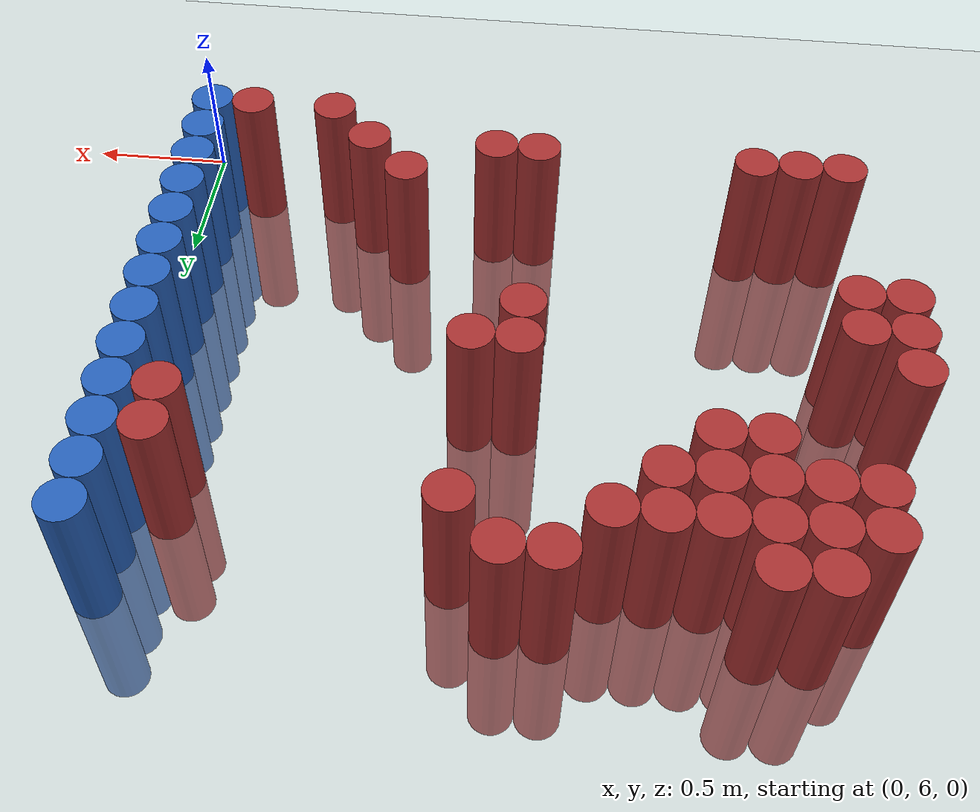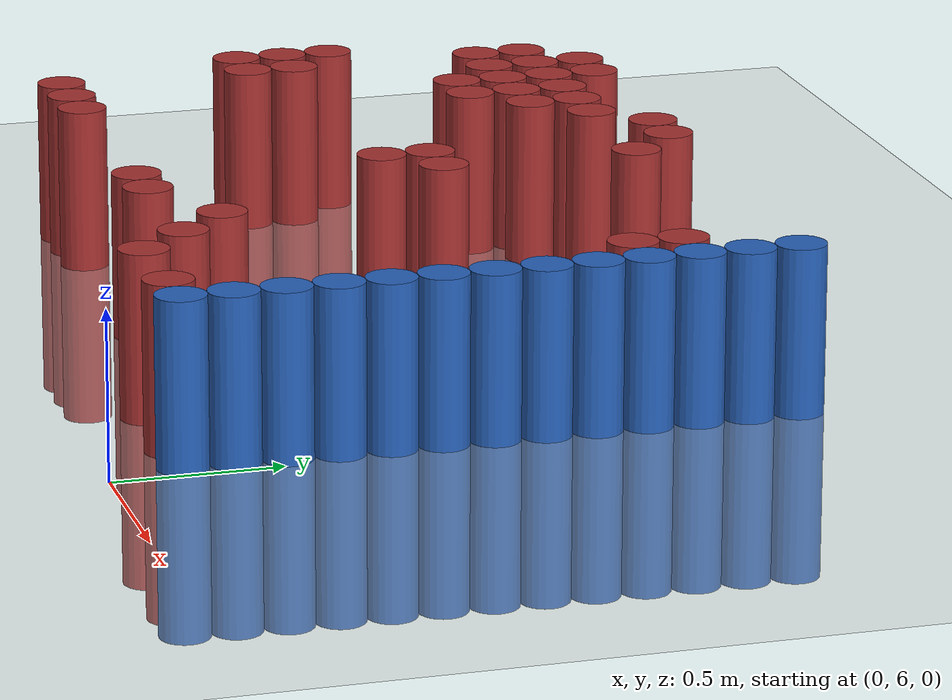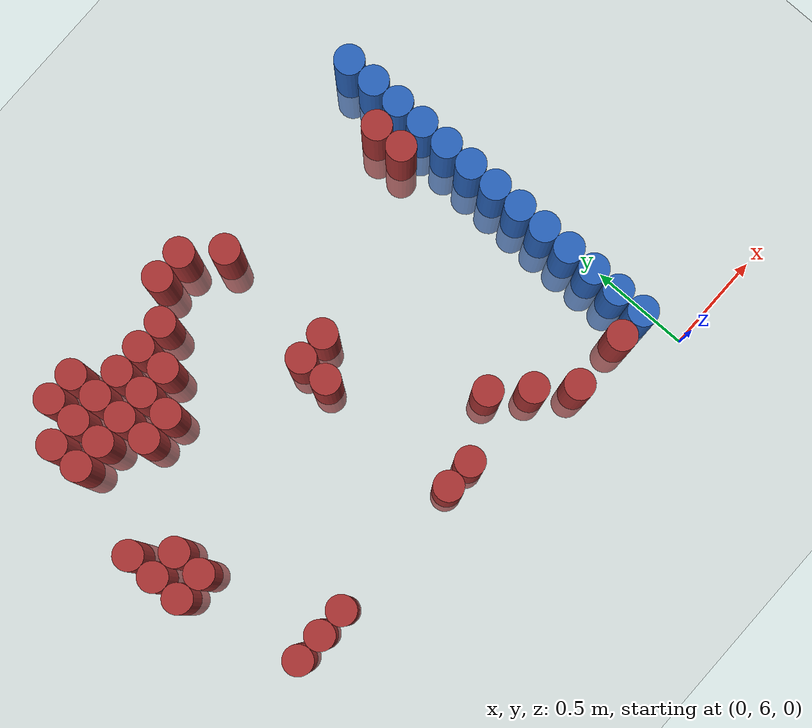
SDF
<sdf version="1.6">
 <world name="default">
  <model name="ground_plane">
   <static>1</static>
   <link name="link">
    <collision name="collision">
     <geometry><plane><normal>0 0 1</normal><size>100 100</size></plane></geometry>
     <surface><friction><ode><mu>100</mu><mu2>50</mu2></ode></friction></surface>
    </collision>
    <visual name="visual">
     <cast_shadows>0</cast_shadows>
     <geometry><plane><normal>0 0 1</normal><size>100 100</size></plane></geometry>
     <material>
      <script><uri>file://media/materials/scripts/gazebo.material</uri><name>Gazebo/Grey</name></script>
     </material>
    </visual>
   </link>
  </model>
  <model name="unit_cylinder_167">
   <static>1</static>
   <pose>-2.475000 6.975000 0.000000 0.000000 0.000000 0.000000</pose>
   <link name="link">
    <inertial>
     <mass>1</mass>
     <inertia><ixx>0.145833</ixx><ixy>0</ixy><ixz>0</ixz><iyy>0.145833</iyy><iyz>0</iyz><izz>0.125</izz></inertia>
    </inertial>
    <collision name="collision">
     <geometry><cylinder><radius>0.075000</radius><length>1</length></cylinder></geometry>
    </collision>
    <visual name="visual">
     <geometry><cylinder><radius>0.075000</radius><length>1</length></cylinder></geometry>
     <material>
      <ambient>0.648000 0.192000 0.192000 1</ambient>
      <diffuse>0.648000 0.192000 0.192000 1</diffuse>
     </material>
     <material>
      <script><name>Gazebo/Grey</name><uri>file://media/materials/scripts/gazebo.material</uri></script>
     </material>
    </visual>
   </link>
  </model>
  <model name="unit_cylinder_168">
   <static>1</static>
   <pose>-2.475000 7.125000 0.000000 0.000000 0.000000 0.000000</pose>
   <link name="link">
    <inertial>
     <mass>1</mass>
     <inertia><ixx>0.145833</ixx><ixy>0</ixy><ixz>0</ixz><iyy>0.145833</iyy><iyz>0</iyz><izz>0.125</izz></inertia>
    </inertial>
    <collision name="collision">
     <geometry><cylinder><radius>0.075000</radius><length>1</length></cylinder></geometry>
    </collision>
    <visual name="visual">
     <geometry><cylinder><radius>0.075000</radius><length>1</length></cylinder></geometry>
     <material>
      <ambient>0.648000 0.192000 0.192000 1</ambient>
      <diffuse>0.648000 0.192000 0.192000 1</diffuse>
     </material>
     <material>
      <script><name>Gazebo/Grey</name><uri>file://media/materials/scripts/gazebo.material</uri></script>
     </material>
    </visual>
   </link>
  </model>
  <model name="unit_cylinder_169">
   <static>1</static>
   <pose>-2.475000 7.275000 0.000000 0.000000 0.000000 0.000000</pose>
   <link name="link">
    <inertial>
     <mass>1</mass>
     <inertia><ixx>0.145833</ixx><ixy>0</ixy><ixz>0</ixz><iyy>0.145833</iyy><iyz>0</iyz><izz>0.125</izz></inertia>
    </inertial>
    <collision name="collision">
     <geometry><cylinder><radius>0.075000</radius><length>1</length></cylinder></geometry>
    </collision>
    <visual name="visual">
     <geometry><cylinder><radius>0.075000</radius><length>1</length></cylinder></geometry>
     <material>
      <ambient>0.648000 0.192000 0.192000 1</ambient>
      <diffuse>0.648000 0.192000 0.192000 1</diffuse>
     </material>
     <material>
      <script><name>Gazebo/Grey</name><uri>file://media/materials/scripts/gazebo.material</uri></script>
     </material>
    </visual>
   </link>
  </model>
  <model name="unit_cylinder_180">
   <static>1</static>
   <pose>-2.325000 6.375000 0.000000 0.000000 0.000000 0.000000</pose>
   <link name="link">
    <inertial>
     <mass>1</mass>
     <inertia><ixx>0.145833</ixx><ixy>0</ixy><ixz>0</ixz><iyy>0.145833</iyy><iyz>0</iyz><izz>0.125</izz></inertia>
    </inertial>
    <collision name="collision">
     <geometry><cylinder><radius>0.075000</radius><length>1</length></cylinder></geometry>
    </collision>
    <visual name="visual">
     <geometry><cylinder><radius>0.075000</radius><length>1</length></cylinder></geometry>
     <material>
      <ambient>0.648000 0.192000 0.192000 1</ambient>
      <diffuse>0.648000 0.192000 0.192000 1</diffuse>
     </material>
     <material>
      <script><name>Gazebo/Grey</name><uri>file://media/materials/scripts/gazebo.material</uri></script>
     </material>
    </visual>
   </link>
  </model>
  <model name="unit_cylinder_181">
   <static>1</static>
   <pose>-2.325000 6.975000 0.000000 0.000000 0.000000 0.000000</pose>
   <link name="link">
    <inertial>
     <mass>1</mass>
     <inertia><ixx>0.145833</ixx><ixy>0</ixy><ixz>0</ixz><iyy>0.145833</iyy><iyz>0</iyz><izz>0.125</izz></inertia>
    </inertial>
    <collision name="collision">
     <geometry><cylinder><radius>0.075000</radius><length>1</length></cylinder></geometry>
    </collision>
    <visual name="visual">
     <geometry><cylinder><radius>0.075000</radius><length>1</length></cylinder></geometry>
     <material>
      <ambient>0.648000 0.192000 0.192000 1</ambient>
      <diffuse>0.648000 0.192000 0.192000 1</diffuse>
     </material>
     <material>
      <script><name>Gazebo/Grey</name><uri>file://media/materials/scripts/gazebo.material</uri></script>
     </material>
    </visual>
   </link>
  </model>
  <model name="unit_cylinder_182">
   <static>1</static>
   <pose>-2.325000 7.125000 0.000000 0.000000 0.000000 0.000000</pose>
   <link name="link">
    <inertial>
     <mass>1</mass>
     <inertia><ixx>0.145833</ixx><ixy>0</ixy><ixz>0</ixz><iyy>0.145833</iyy><iyz>0</iyz><izz>0.125</izz></inertia>
    </inertial>
    <collision name="collision">
     <geometry><cylinder><radius>0.075000</radius><length>1</length></cylinder></geometry>
    </collision>
    <visual name="visual">
     <geometry><cylinder><radius>0.075000</radius><length>1</length></cylinder></geometry>
     <material>
      <ambient>0.648000 0.192000 0.192000 1</ambient>
      <diffuse>0.648000 0.192000 0.192000 1</diffuse>
     </material>
     <material>
      <script><name>Gazebo/Grey</name><uri>file://media/materials/scripts/gazebo.material</uri></script>
     </material>
    </visual>
   </link>
  </model>
  <model name="unit_cylinder_183">
   <static>1</static>
   <pose>-2.325000 7.725000 0.000000 0.000000 0.000000 0.000000</pose>
   <link name="link">
    <inertial>
     <mass>1</mass>
     <inertia><ixx>0.145833</ixx><ixy>0</ixy><ixz>0</ixz><iyy>0.145833</iyy><iyz>0</iyz><izz>0.125</izz></inertia>
    </inertial>
    <collision name="collision">
     <geometry><cylinder><radius>0.075000</radius><length>1</length></cylinder></geometry>
    </collision>
    <visual name="visual">
     <geometry><cylinder><radius>0.075000</radius><length>1</length></cylinder></geometry>
     <material>
      <ambient>0.648000 0.192000 0.192000 1</ambient>
      <diffuse>0.648000 0.192000 0.192000 1</diffuse>
     </material>
     <material>
      <script><name>Gazebo/Grey</name><uri>file://media/materials/scripts/gazebo.material</uri></script>
     </material>
    </visual>
   </link>
  </model>
  <model name="unit_cylinder_184">
   <static>1</static>
   <pose>-2.325000 7.875000 0.000000 0.000000 0.000000 0.000000</pose>
   <link name="link">
    <inertial>
     <mass>1</mass>
     <inertia><ixx>0.145833</ixx><ixy>0</ixy><ixz>0</ixz><iyy>0.145833</iyy><iyz>0</iyz><izz>0.125</izz></inertia>
    </inertial>
    <collision name="collision">
     <geometry><cylinder><radius>0.075000</radius><length>1</length></cylinder></geometry>
    </collision>
    <visual name="visual">
     <geometry><cylinder><radius>0.075000</radius><length>1</length></cylinder></geometry>
     <material>
      <ambient>0.648000 0.192000 0.192000 1</ambient>
      <diffuse>0.648000 0.192000 0.192000 1</diffuse>
     </material>
     <material>
      <script><name>Gazebo/Grey</name><uri>file://media/materials/scripts/gazebo.material</uri></script>
     </material>
    </visual>
   </link>
  </model>
  <model name="unit_cylinder_196">
   <static>1</static>
   <pose>-2.175000 6.375000 0.000000 0.000000 0.000000 0.000000</pose>
   <link name="link">
    <inertial>
     <mass>1</mass>
     <inertia><ixx>0.145833</ixx><ixy>0</ixy><ixz>0</ixz><iyy>0.145833</iyy><iyz>0</iyz><izz>0.125</izz></inertia>
    </inertial>
    <collision name="collision">
     <geometry><cylinder><radius>0.075000</radius><length>1</length></cylinder></geometry>
    </collision>
    <visual name="visual">
     <geometry><cylinder><radius>0.075000</radius><length>1</length></cylinder></geometry>
     <material>
      <ambient>0.648000 0.192000 0.192000 1</ambient>
      <diffuse>0.648000 0.192000 0.192000 1</diffuse>
     </material>
     <material>
      <script><name>Gazebo/Grey</name><uri>file://media/materials/scripts/gazebo.material</uri></script>
     </material>
    </visual>
   </link>
  </model>
  <model name="unit_cylinder_197">
   <static>1</static>
   <pose>-2.175000 7.725000 0.000000 0.000000 0.000000 0.000000</pose>
   <link name="link">
    <inertial>
     <mass>1</mass>
     <inertia><ixx>0.145833</ixx><ixy>0</ixy><ixz>0</ixz><iyy>0.145833</iyy><iyz>0</iyz><izz>0.125</izz></inertia>
    </inertial>
    <collision name="collision">
     <geometry><cylinder><radius>0.075000</radius><length>1</length></cylinder></geometry>
    </collision>
    <visual name="visual">
     <geometry><cylinder><radius>0.075000</radius><length>1</length></cylinder></geometry>
     <material>
      <ambient>0.648000 0.192000 0.192000 1</ambient>
      <diffuse>0.648000 0.192000 0.192000 1</diffuse>
     </material>
     <material>
      <script><name>Gazebo/Grey</name><uri>file://media/materials/scripts/gazebo.material</uri></script>
     </material>
    </visual>
   </link>
  </model>
  <model name="unit_cylinder_198">
   <static>1</static>
   <pose>-2.175000 7.875000 0.000000 0.000000 0.000000 0.000000</pose>
   <link name="link">
    <inertial>
     <mass>1</mass>
     <inertia><ixx>0.145833</ixx><ixy>0</ixy><ixz>0</ixz><iyy>0.145833</iyy><iyz>0</iyz><izz>0.125</izz></inertia>
    </inertial>
    <collision name="collision">
     <geometry><cylinder><radius>0.075000</radius><length>1</length></cylinder></geometry>
    </collision>
    <visual name="visual">
     <geometry><cylinder><radius>0.075000</radius><length>1</length></cylinder></geometry>
     <material>
      <ambient>0.648000 0.192000 0.192000 1</ambient>
      <diffuse>0.648000 0.192000 0.192000 1</diffuse>
     </material>
     <material>
      <script><name>Gazebo/Grey</name><uri>file://media/materials/scripts/gazebo.material</uri></script>
     </material>
    </visual>
   </link>
  </model>
  <model name="unit_cylinder_199">
   <static>1</static>
   <pose>-2.175000 8.025000 0.000000 0.000000 0.000000 0.000000</pose>
   <link name="link">
    <inertial>
     <mass>1</mass>
     <inertia><ixx>0.145833</ixx><ixy>0</ixy><ixz>0</ixz><iyy>0.145833</iyy><iyz>0</iyz><izz>0.125</izz></inertia>
    </inertial>
    <collision name="collision">
     <geometry><cylinder><radius>0.075000</radius><length>1</length></cylinder></geometry>
    </collision>
    <visual name="visual">
     <geometry><cylinder><radius>0.075000</radius><length>1</length></cylinder></geometry>
     <material>
      <ambient>0.648000 0.192000 0.192000 1</ambient>
      <diffuse>0.648000 0.192000 0.192000 1</diffuse>
     </material>
     <material>
      <script><name>Gazebo/Grey</name><uri>file://media/materials/scripts/gazebo.material</uri></script>
     </material>
    </visual>
   </link>
  </model>
  <model name="unit_cylinder_206">
   <static>1</static>
   <pose>-2.025000 6.375000 0.000000 0.000000 0.000000 0.000000</pose>
   <link name="link">
    <inertial>
     <mass>1</mass>
     <inertia><ixx>0.145833</ixx><ixy>0</ixy><ixz>0</ixz><iyy>0.145833</iyy><iyz>0</iyz><izz>0.125</izz></inertia>
    </inertial>
    <collision name="collision">
     <geometry><cylinder><radius>0.075000</radius><length>1</length></cylinder></geometry>
    </collision>
    <visual name="visual">
     <geometry><cylinder><radius>0.075000</radius><length>1</length></cylinder></geometry>
     <material>
      <ambient>0.648000 0.192000 0.192000 1</ambient>
      <diffuse>0.648000 0.192000 0.192000 1</diffuse>
     </material>
     <material>
      <script><name>Gazebo/Grey</name><uri>file://media/materials/scripts/gazebo.material</uri></script>
     </material>
    </visual>
   </link>
  </model>
  <model name="unit_cylinder_207">
   <static>1</static>
   <pose>-2.025000 7.575000 0.000000 0.000000 0.000000 0.000000</pose>
   <link name="link">
    <inertial>
     <mass>1</mass>
     <inertia><ixx>0.145833</ixx><ixy>0</ixy><ixz>0</ixz><iyy>0.145833</iyy><iyz>0</iyz><izz>0.125</izz></inertia>
    </inertial>
    <collision name="collision">
     <geometry><cylinder><radius>0.075000</radius><length>1</length></cylinder></geometry>
    </collision>
    <visual name="visual">
     <geometry><cylinder><radius>0.075000</radius><length>1</length></cylinder></geometry>
     <material>
      <ambient>0.648000 0.192000 0.192000 1</ambient>
      <diffuse>0.648000 0.192000 0.192000 1</diffuse>
     </material>
     <material>
      <script><name>Gazebo/Grey</name><uri>file://media/materials/scripts/gazebo.material</uri></script>
     </material>
    </visual>
   </link>
  </model>
  <model name="unit_cylinder_208">
   <static>1</static>
   <pose>-2.025000 7.725000 0.000000 0.000000 0.000000 0.000000</pose>
   <link name="link">
    <inertial>
     <mass>1</mass>
     <inertia><ixx>0.145833</ixx><ixy>0</ixy><ixz>0</ixz><iyy>0.145833</iyy><iyz>0</iyz><izz>0.125</izz></inertia>
    </inertial>
    <collision name="collision">
     <geometry><cylinder><radius>0.075000</radius><length>1</length></cylinder></geometry>
    </collision>
    <visual name="visual">
     <geometry><cylinder><radius>0.075000</radius><length>1</length></cylinder></geometry>
     <material>
      <ambient>0.648000 0.192000 0.192000 1</ambient>
      <diffuse>0.648000 0.192000 0.192000 1</diffuse>
     </material>
     <material>
      <script><name>Gazebo/Grey</name><uri>file://media/materials/scripts/gazebo.material</uri></script>
     </material>
    </visual>
   </link>
  </model>
  <model name="unit_cylinder_209">
   <static>1</static>
   <pose>-2.025000 7.875000 0.000000 0.000000 0.000000 0.000000</pose>
   <link name="link">
    <inertial>
     <mass>1</mass>
     <inertia><ixx>0.145833</ixx><ixy>0</ixy><ixz>0</ixz><iyy>0.145833</iyy><iyz>0</iyz><izz>0.125</izz></inertia>
    </inertial>
    <collision name="collision">
     <geometry><cylinder><radius>0.075000</radius><length>1</length></cylinder></geometry>
    </collision>
    <visual name="visual">
     <geometry><cylinder><radius>0.075000</radius><length>1</length></cylinder></geometry>
     <material>
      <ambient>0.648000 0.192000 0.192000 1</ambient>
      <diffuse>0.648000 0.192000 0.192000 1</diffuse>
     </material>
     <material>
      <script><name>Gazebo/Grey</name><uri>file://media/materials/scripts/gazebo.material</uri></script>
     </material>
    </visual>
   </link>
  </model>
  <model name="unit_cylinder_210">
   <static>1</static>
   <pose>-2.025000 8.025000 0.000000 0.000000 0.000000 0.000000</pose>
   <link name="link">
    <inertial>
     <mass>1</mass>
     <inertia><ixx>0.145833</ixx><ixy>0</ixy><ixz>0</ixz><iyy>0.145833</iyy><iyz>0</iyz><izz>0.125</izz></inertia>
    </inertial>
    <collision name="collision">
     <geometry><cylinder><radius>0.075000</radius><length>1</length></cylinder></geometry>
    </collision>
    <visual name="visual">
     <geometry><cylinder><radius>0.075000</radius><length>1</length></cylinder></geometry>
     <material>
      <ambient>0.648000 0.192000 0.192000 1</ambient>
      <diffuse>0.648000 0.192000 0.192000 1</diffuse>
     </material>
     <material>
      <script><name>Gazebo/Grey</name><uri>file://media/materials/scripts/gazebo.material</uri></script>
     </material>
    </visual>
   </link>
  </model>
  <model name="unit_cylinder_218">
   <static>1</static>
   <pose>-1.875000 7.575000 0.000000 0.000000 0.000000 0.000000</pose>
   <link name="link">
    <inertial>
     <mass>1</mass>
     <inertia><ixx>0.145833</ixx><ixy>0</ixy><ixz>0</ixz><iyy>0.145833</iyy><iyz>0</iyz><izz>0.125</izz></inertia>
    </inertial>
    <collision name="collision">
     <geometry><cylinder><radius>0.075000</radius><length>1</length></cylinder></geometry>
    </collision>
    <visual name="visual">
     <geometry><cylinder><radius>0.075000</radius><length>1</length></cylinder></geometry>
     <material>
      <ambient>0.648000 0.192000 0.192000 1</ambient>
      <diffuse>0.648000 0.192000 0.192000 1</diffuse>
     </material>
     <material>
      <script><name>Gazebo/Grey</name><uri>file://media/materials/scripts/gazebo.material</uri></script>
     </material>
    </visual>
   </link>
  </model>
  <model name="unit_cylinder_219">
   <static>1</static>
   <pose>-1.875000 7.725000 0.000000 0.000000 0.000000 0.000000</pose>
   <link name="link">
    <inertial>
     <mass>1</mass>
     <inertia><ixx>0.145833</ixx><ixy>0</ixy><ixz>0</ixz><iyy>0.145833</iyy><iyz>0</iyz><izz>0.125</izz></inertia>
    </inertial>
    <collision name="collision">
     <geometry><cylinder><radius>0.075000</radius><length>1</length></cylinder></geometry>
    </collision>
    <visual name="visual">
     <geometry><cylinder><radius>0.075000</radius><length>1</length></cylinder></geometry>
     <material>
      <ambient>0.648000 0.192000 0.192000 1</ambient>
      <diffuse>0.648000 0.192000 0.192000 1</diffuse>
     </material>
     <material>
      <script><name>Gazebo/Grey</name><uri>file://media/materials/scripts/gazebo.material</uri></script>
     </material>
    </visual>
   </link>
  </model>
  <model name="unit_cylinder_220">
   <static>1</static>
   <pose>-1.875000 7.875000 0.000000 0.000000 0.000000 0.000000</pose>
   <link name="link">
    <inertial>
     <mass>1</mass>
     <inertia><ixx>0.145833</ixx><ixy>0</ixy><ixz>0</ixz><iyy>0.145833</iyy><iyz>0</iyz><izz>0.125</izz></inertia>
    </inertial>
    <collision name="collision">
     <geometry><cylinder><radius>0.075000</radius><length>1</length></cylinder></geometry>
    </collision>
    <visual name="visual">
     <geometry><cylinder><radius>0.075000</radius><length>1</length></cylinder></geometry>
     <material>
      <ambient>0.648000 0.192000 0.192000 1</ambient>
      <diffuse>0.648000 0.192000 0.192000 1</diffuse>
     </material>
     <material>
      <script><name>Gazebo/Grey</name><uri>file://media/materials/scripts/gazebo.material</uri></script>
     </material>
    </visual>
   </link>
  </model>
  <model name="unit_cylinder_224">
   <static>1</static>
   <pose>-1.725000 7.725000 0.000000 0.000000 0.000000 0.000000</pose>
   <link name="link">
    <inertial>
     <mass>1</mass>
     <inertia><ixx>0.145833</ixx><ixy>0</ixy><ixz>0</ixz><iyy>0.145833</iyy><iyz>0</iyz><izz>0.125</izz></inertia>
    </inertial>
    <collision name="collision">
     <geometry><cylinder><radius>0.075000</radius><length>1</length></cylinder></geometry>
    </collision>
    <visual name="visual">
     <geometry><cylinder><radius>0.075000</radius><length>1</length></cylinder></geometry>
     <material>
      <ambient>0.648000 0.192000 0.192000 1</ambient>
      <diffuse>0.648000 0.192000 0.192000 1</diffuse>
     </material>
     <material>
      <script><name>Gazebo/Grey</name><uri>file://media/materials/scripts/gazebo.material</uri></script>
     </material>
    </visual>
   </link>
  </model>
  <model name="unit_cylinder_225">
   <static>1</static>
   <pose>-1.725000 7.875000 0.000000 0.000000 0.000000 0.000000</pose>
   <link name="link">
    <inertial>
     <mass>1</mass>
     <inertia><ixx>0.145833</ixx><ixy>0</ixy><ixz>0</ixz><iyy>0.145833</iyy><iyz>0</iyz><izz>0.125</izz></inertia>
    </inertial>
    <collision name="collision">
     <geometry><cylinder><radius>0.075000</radius><length>1</length></cylinder></geometry>
    </collision>
    <visual name="visual">
     <geometry><cylinder><radius>0.075000</radius><length>1</length></cylinder></geometry>
     <material>
      <ambient>0.648000 0.192000 0.192000 1</ambient>
      <diffuse>0.648000 0.192000 0.192000 1</diffuse>
     </material>
     <material>
      <script><name>Gazebo/Grey</name><uri>file://media/materials/scripts/gazebo.material</uri></script>
     </material>
    </visual>
   </link>
  </model>
  <model name="unit_cylinder_229">
   <static>1</static>
   <pose>-1.575000 7.875000 0.000000 0.000000 0.000000 0.000000</pose>
   <link name="link">
    <inertial>
     <mass>1</mass>
     <inertia><ixx>0.145833</ixx><ixy>0</ixy><ixz>0</ixz><iyy>0.145833</iyy><iyz>0</iyz><izz>0.125</izz></inertia>
    </inertial>
    <collision name="collision">
     <geometry><cylinder><radius>0.075000</radius><length>1</length></cylinder></geometry>
    </collision>
    <visual name="visual">
     <geometry><cylinder><radius>0.075000</radius><length>1</length></cylinder></geometry>
     <material>
      <ambient>0.648000 0.192000 0.192000 1</ambient>
      <diffuse>0.648000 0.192000 0.192000 1</diffuse>
     </material>
     <material>
      <script><name>Gazebo/Grey</name><uri>file://media/materials/scripts/gazebo.material</uri></script>
     </material>
    </visual>
   </link>
  </model>
  <model name="unit_cylinder_233">
   <static>1</static>
   <pose>-1.425000 8.025000 0.000000 0.000000 0.000000 0.000000</pose>
   <link name="link">
    <inertial>
     <mass>1</mass>
     <inertia><ixx>0.145833</ixx><ixy>0</ixy><ixz>0</ixz><iyy>0.145833</iyy><iyz>0</iyz><izz>0.125</izz></inertia>
    </inertial>
    <collision name="collision">
     <geometry><cylinder><radius>0.075000</radius><length>1</length></cylinder></geometry>
    </collision>
    <visual name="visual">
     <geometry><cylinder><radius>0.075000</radius><length>1</length></cylinder></geometry>
     <material>
      <ambient>0.648000 0.192000 0.192000 1</ambient>
      <diffuse>0.648000 0.192000 0.192000 1</diffuse>
     </material>
     <material>
      <script><name>Gazebo/Grey</name><uri>file://media/materials/scripts/gazebo.material</uri></script>
     </material>
    </visual>
   </link>
  </model>
  <model name="unit_cylinder_236">
   <static>1</static>
   <pose>-1.275000 6.375000 0.000000 0.000000 0.000000 0.000000</pose>
   <link name="link">
    <inertial>
     <mass>1</mass>
     <inertia><ixx>0.145833</ixx><ixy>0</ixy><ixz>0</ixz><iyy>0.145833</iyy><iyz>0</iyz><izz>0.125</izz></inertia>
    </inertial>
    <collision name="collision">
     <geometry><cylinder><radius>0.075000</radius><length>1</length></cylinder></geometry>
    </collision>
    <visual name="visual">
     <geometry><cylinder><radius>0.075000</radius><length>1</length></cylinder></geometry>
     <material>
      <ambient>0.648000 0.192000 0.192000 1</ambient>
      <diffuse>0.648000 0.192000 0.192000 1</diffuse>
     </material>
     <material>
      <script><name>Gazebo/Grey</name><uri>file://media/materials/scripts/gazebo.material</uri></script>
     </material>
    </visual>
   </link>
  </model>
  <model name="unit_cylinder_237">
   <static>1</static>
   <pose>-1.275000 7.125000 0.000000 0.000000 0.000000 0.000000</pose>
   <link name="link">
    <inertial>
     <mass>1</mass>
     <inertia><ixx>0.145833</ixx><ixy>0</ixy><ixz>0</ixz><iyy>0.145833</iyy><iyz>0</iyz><izz>0.125</izz></inertia>
    </inertial>
    <collision name="collision">
     <geometry><cylinder><radius>0.075000</radius><length>1</length></cylinder></geometry>
    </collision>
    <visual name="visual">
     <geometry><cylinder><radius>0.075000</radius><length>1</length></cylinder></geometry>
     <material>
      <ambient>0.648000 0.192000 0.192000 1</ambient>
      <diffuse>0.648000 0.192000 0.192000 1</diffuse>
     </material>
     <material>
      <script><name>Gazebo/Grey</name><uri>file://media/materials/scripts/gazebo.material</uri></script>
     </material>
    </visual>
   </link>
  </model>
  <model name="unit_cylinder_238">
   <static>1</static>
   <pose>-1.275000 7.275000 0.000000 0.000000 0.000000 0.000000</pose>
   <link name="link">
    <inertial>
     <mass>1</mass>
     <inertia><ixx>0.145833</ixx><ixy>0</ixy><ixz>0</ixz><iyy>0.145833</iyy><iyz>0</iyz><izz>0.125</izz></inertia>
    </inertial>
    <collision name="collision">
     <geometry><cylinder><radius>0.075000</radius><length>1</length></cylinder></geometry>
    </collision>
    <visual name="visual">
     <geometry><cylinder><radius>0.075000</radius><length>1</length></cylinder></geometry>
     <material>
      <ambient>0.648000 0.192000 0.192000 1</ambient>
      <diffuse>0.648000 0.192000 0.192000 1</diffuse>
     </material>
     <material>
      <script><name>Gazebo/Grey</name><uri>file://media/materials/scripts/gazebo.material</uri></script>
     </material>
    </visual>
   </link>
  </model>
  <model name="unit_cylinder_239">
   <static>1</static>
   <pose>-1.275000 8.025000 0.000000 0.000000 0.000000 0.000000</pose>
   <link name="link">
    <inertial>
     <mass>1</mass>
     <inertia><ixx>0.145833</ixx><ixy>0</ixy><ixz>0</ixz><iyy>0.145833</iyy><iyz>0</iyz><izz>0.125</izz></inertia>
    </inertial>
    <collision name="collision">
     <geometry><cylinder><radius>0.075000</radius><length>1</length></cylinder></geometry>
    </collision>
    <visual name="visual">
     <geometry><cylinder><radius>0.075000</radius><length>1</length></cylinder></geometry>
     <material>
      <ambient>0.648000 0.192000 0.192000 1</ambient>
      <diffuse>0.648000 0.192000 0.192000 1</diffuse>
     </material>
     <material>
      <script><name>Gazebo/Grey</name><uri>file://media/materials/scripts/gazebo.material</uri></script>
     </material>
    </visual>
   </link>
  </model>
  <model name="unit_cylinder_240">
   <static>1</static>
   <pose>-1.125000 6.375000 0.000000 0.000000 0.000000 0.000000</pose>
   <link name="link">
    <inertial>
     <mass>1</mass>
     <inertia><ixx>0.145833</ixx><ixy>0</ixy><ixz>0</ixz><iyy>0.145833</iyy><iyz>0</iyz><izz>0.125</izz></inertia>
    </inertial>
    <collision name="collision">
     <geometry><cylinder><radius>0.075000</radius><length>1</length></cylinder></geometry>
    </collision>
    <visual name="visual">
     <geometry><cylinder><radius>0.075000</radius><length>1</length></cylinder></geometry>
     <material>
      <ambient>0.648000 0.192000 0.192000 1</ambient>
      <diffuse>0.648000 0.192000 0.192000 1</diffuse>
     </material>
     <material>
      <script><name>Gazebo/Grey</name><uri>file://media/materials/scripts/gazebo.material</uri></script>
     </material>
    </visual>
   </link>
  </model>
  <model name="unit_cylinder_241">
   <static>1</static>
   <pose>-1.125000 7.275000 0.000000 0.000000 0.000000 0.000000</pose>
   <link name="link">
    <inertial>
     <mass>1</mass>
     <inertia><ixx>0.145833</ixx><ixy>0</ixy><ixz>0</ixz><iyy>0.145833</iyy><iyz>0</iyz><izz>0.125</izz></inertia>
    </inertial>
    <collision name="collision">
     <geometry><cylinder><radius>0.075000</radius><length>1</length></cylinder></geometry>
    </collision>
    <visual name="visual">
     <geometry><cylinder><radius>0.075000</radius><length>1</length></cylinder></geometry>
     <material>
      <ambient>0.648000 0.192000 0.192000 1</ambient>
      <diffuse>0.648000 0.192000 0.192000 1</diffuse>
     </material>
     <material>
      <script><name>Gazebo/Grey</name><uri>file://media/materials/scripts/gazebo.material</uri></script>
     </material>
    </visual>
   </link>
  </model>
  <model name="unit_cylinder_242">
   <static>1</static>
   <pose>-1.125000 7.875000 0.000000 0.000000 0.000000 0.000000</pose>
   <link name="link">
    <inertial>
     <mass>1</mass>
     <inertia><ixx>0.145833</ixx><ixy>0</ixy><ixz>0</ixz><iyy>0.145833</iyy><iyz>0</iyz><izz>0.125</izz></inertia>
    </inertial>
    <collision name="collision">
     <geometry><cylinder><radius>0.075000</radius><length>1</length></cylinder></geometry>
    </collision>
    <visual name="visual">
     <geometry><cylinder><radius>0.075000</radius><length>1</length></cylinder></geometry>
     <material>
      <ambient>0.648000 0.192000 0.192000 1</ambient>
      <diffuse>0.648000 0.192000 0.192000 1</diffuse>
     </material>
     <material>
      <script><name>Gazebo/Grey</name><uri>file://media/materials/scripts/gazebo.material</uri></script>
     </material>
    </visual>
   </link>
  </model>
  <model name="unit_cylinder_245">
   <static>1</static>
   <pose>-0.825000 6.525000 0.000000 0.000000 0.000000 0.000000</pose>
   <link name="link">
    <inertial>
     <mass>1</mass>
     <inertia><ixx>0.145833</ixx><ixy>0</ixy><ixz>0</ixz><iyy>0.145833</iyy><iyz>0</iyz><izz>0.125</izz></inertia>
    </inertial>
    <collision name="collision">
     <geometry><cylinder><radius>0.075000</radius><length>1</length></cylinder></geometry>
    </collision>
    <visual name="visual">
     <geometry><cylinder><radius>0.075000</radius><length>1</length></cylinder></geometry>
     <material>
      <ambient>0.648000 0.192000 0.192000 1</ambient>
      <diffuse>0.648000 0.192000 0.192000 1</diffuse>
     </material>
     <material>
      <script><name>Gazebo/Grey</name><uri>file://media/materials/scripts/gazebo.material</uri></script>
     </material>
    </visual>
   </link>
  </model>
  <model name="unit_cylinder_247">
   <static>1</static>
   <pose>-0.675000 6.375000 0.000000 0.000000 0.000000 0.000000</pose>
   <link name="link">
    <inertial>
     <mass>1</mass>
     <inertia><ixx>0.145833</ixx><ixy>0</ixy><ixz>0</ixz><iyy>0.145833</iyy><iyz>0</iyz><izz>0.125</izz></inertia>
    </inertial>
    <collision name="collision">
     <geometry><cylinder><radius>0.075000</radius><length>1</length></cylinder></geometry>
    </collision>
    <visual name="visual">
     <geometry><cylinder><radius>0.075000</radius><length>1</length></cylinder></geometry>
     <material>
      <ambient>0.648000 0.192000 0.192000 1</ambient>
      <diffuse>0.648000 0.192000 0.192000 1</diffuse>
     </material>
     <material>
      <script><name>Gazebo/Grey</name><uri>file://media/materials/scripts/gazebo.material</uri></script>
     </material>
    </visual>
   </link>
  </model>
  <model name="unit_cylinder_248">
   <static>1</static>
   <pose>-0.525000 6.225000 0.000000 0.000000 0.000000 0.000000</pose>
   <link name="link">
    <inertial>
     <mass>1</mass>
     <inertia><ixx>0.145833</ixx><ixy>0</ixy><ixz>0</ixz><iyy>0.145833</iyy><iyz>0</iyz><izz>0.125</izz></inertia>
    </inertial>
    <collision name="collision">
     <geometry><cylinder><radius>0.075000</radius><length>1</length></cylinder></geometry>
    </collision>
    <visual name="visual">
     <geometry><cylinder><radius>0.075000</radius><length>1</length></cylinder></geometry>
     <material>
      <ambient>0.648000 0.192000 0.192000 1</ambient>
      <diffuse>0.648000 0.192000 0.192000 1</diffuse>
     </material>
     <material>
      <script><name>Gazebo/Grey</name><uri>file://media/materials/scripts/gazebo.material</uri></script>
     </material>
    </visual>
   </link>
  </model>
  <model name="unit_cylinder_263">
   <static>1</static>
   <pose>-0.225000 6.225000 0.000000 0.000000 0.000000 0.000000</pose>
   <link name="link">
    <inertial>
     <mass>1</mass>
     <inertia><ixx>0.145833</ixx><ixy>0</ixy><ixz>0</ixz><iyy>0.145833</iyy><iyz>0</iyz><izz>0.125</izz></inertia>
    </inertial>
    <collision name="collision">
     <geometry><cylinder><radius>0.075000</radius><length>1</length></cylinder></geometry>
    </collision>
    <visual name="visual">
     <geometry><cylinder><radius>0.075000</radius><length>1</length></cylinder></geometry>
     <material>
      <ambient>0.648000 0.192000 0.192000 1</ambient>
      <diffuse>0.648000 0.192000 0.192000 1</diffuse>
     </material>
     <material>
      <script><name>Gazebo/Grey</name><uri>file://media/materials/scripts/gazebo.material</uri></script>
     </material>
    </visual>
   </link>
  </model>
  <model name="unit_cylinder_264">
   <static>1</static>
   <pose>-0.225000 7.575000 0.000000 0.000000 0.000000 0.000000</pose>
   <link name="link">
    <inertial>
     <mass>1</mass>
     <inertia><ixx>0.145833</ixx><ixy>0</ixy><ixz>0</ixz><iyy>0.145833</iyy><iyz>0</iyz><izz>0.125</izz></inertia>
    </inertial>
    <collision name="collision">
     <geometry><cylinder><radius>0.075000</radius><length>1</length></cylinder></geometry>
    </collision>
    <visual name="visual">
     <geometry><cylinder><radius>0.075000</radius><length>1</length></cylinder></geometry>
     <material>
      <ambient>0.648000 0.192000 0.192000 1</ambient>
      <diffuse>0.648000 0.192000 0.192000 1</diffuse>
     </material>
     <material>
      <script><name>Gazebo/Grey</name><uri>file://media/materials/scripts/gazebo.material</uri></script>
     </material>
    </visual>
   </link>
  </model>
  <model name="unit_cylinder_265">
   <static>1</static>
   <pose>-0.225000 7.725000 0.000000 0.000000 0.000000 0.000000</pose>
   <link name="link">
    <inertial>
     <mass>1</mass>
     <inertia><ixx>0.145833</ixx><ixy>0</ixy><ixz>0</ixz><iyy>0.145833</iyy><iyz>0</iyz><izz>0.125</izz></inertia>
    </inertial>
    <collision name="collision">
     <geometry><cylinder><radius>0.075000</radius><length>1</length></cylinder></geometry>
    </collision>
    <visual name="visual">
     <geometry><cylinder><radius>0.075000</radius><length>1</length></cylinder></geometry>
     <material>
      <ambient>0.648000 0.192000 0.192000 1</ambient>
      <diffuse>0.648000 0.192000 0.192000 1</diffuse>
     </material>
     <material>
      <script><name>Gazebo/Grey</name><uri>file://media/materials/scripts/gazebo.material</uri></script>
     </material>
    </visual>
   </link>
  </model>
  <model name="unit_cylinder_278">
   <static>1</static>
   <pose>-0.075000 6.225000 0.000000 0.000000 0.000000 0.000000</pose>
   <link name="link">
    <inertial>
     <mass>1</mass>
     <inertia><ixx>0.145833</ixx><ixy>0</ixy><ixz>0</ixz><iyy>0.145833</iyy><iyz>0</iyz><izz>0.125</izz></inertia>
    </inertial>
    <collision name="collision">
     <geometry><cylinder><radius>0.075000</radius><length>1</length></cylinder></geometry>
    </collision>
    <visual name="visual">
     <geometry><cylinder><radius>0.075000</radius><length>1</length></cylinder></geometry>
     <material>
      <ambient>0.152000 0.379000 0.720000 1</ambient>
      <diffuse>0.152000 0.379000 0.720000 1</diffuse>
     </material>
     <material>
      <script><name>Gazebo/Grey</name><uri>file://media/materials/scripts/gazebo.material</uri></script>
     </material>
    </visual>
   </link>
  </model>
  <model name="unit_cylinder_279">
   <static>1</static>
   <pose>-0.075000 6.375000 0.000000 0.000000 0.000000 0.000000</pose>
   <link name="link">
    <inertial>
     <mass>1</mass>
     <inertia><ixx>0.145833</ixx><ixy>0</ixy><ixz>0</ixz><iyy>0.145833</iyy><iyz>0</iyz><izz>0.125</izz></inertia>
    </inertial>
    <collision name="collision">
     <geometry><cylinder><radius>0.075000</radius><length>1</length></cylinder></geometry>
    </collision>
    <visual name="visual">
     <geometry><cylinder><radius>0.075000</radius><length>1</length></cylinder></geometry>
     <material>
      <ambient>0.152000 0.379000 0.720000 1</ambient>
      <diffuse>0.152000 0.379000 0.720000 1</diffuse>
     </material>
     <material>
      <script><name>Gazebo/Grey</name><uri>file://media/materials/scripts/gazebo.material</uri></script>
     </material>
    </visual>
   </link>
  </model>
  <model name="unit_cylinder_280">
   <static>1</static>
   <pose>-0.075000 6.525000 0.000000 0.000000 0.000000 0.000000</pose>
   <link name="link">
    <inertial>
     <mass>1</mass>
     <inertia><ixx>0.145833</ixx><ixy>0</ixy><ixz>0</ixz><iyy>0.145833</iyy><iyz>0</iyz><izz>0.125</izz></inertia>
    </inertial>
    <collision name="collision">
     <geometry><cylinder><radius>0.075000</radius><length>1</length></cylinder></geometry>
    </collision>
    <visual name="visual">
     <geometry><cylinder><radius>0.075000</radius><length>1</length></cylinder></geometry>
     <material>
      <ambient>0.152000 0.379000 0.720000 1</ambient>
      <diffuse>0.152000 0.379000 0.720000 1</diffuse>
     </material>
     <material>
      <script><name>Gazebo/Grey</name><uri>file://media/materials/scripts/gazebo.material</uri></script>
     </material>
    </visual>
   </link>
  </model>
  <model name="unit_cylinder_281">
   <static>1</static>
   <pose>-0.075000 6.675000 0.000000 0.000000 0.000000 0.000000</pose>
   <link name="link">
    <inertial>
     <mass>1</mass>
     <inertia><ixx>0.145833</ixx><ixy>0</ixy><ixz>0</ixz><iyy>0.145833</iyy><iyz>0</iyz><izz>0.125</izz></inertia>
    </inertial>
    <collision name="collision">
     <geometry><cylinder><radius>0.075000</radius><length>1</length></cylinder></geometry>
    </collision>
    <visual name="visual">
     <geometry><cylinder><radius>0.075000</radius><length>1</length></cylinder></geometry>
     <material>
      <ambient>0.152000 0.379000 0.720000 1</ambient>
      <diffuse>0.152000 0.379000 0.720000 1</diffuse>
     </material>
     <material>
      <script><name>Gazebo/Grey</name><uri>file://media/materials/scripts/gazebo.material</uri></script>
     </material>
    </visual>
   </link>
  </model>
  <model name="unit_cylinder_282">
   <static>1</static>
   <pose>-0.075000 6.825000 0.000000 0.000000 0.000000 0.000000</pose>
   <link name="link">
    <inertial>
     <mass>1</mass>
     <inertia><ixx>0.145833</ixx><ixy>0</ixy><ixz>0</ixz><iyy>0.145833</iyy><iyz>0</iyz><izz>0.125</izz></inertia>
    </inertial>
    <collision name="collision">
     <geometry><cylinder><radius>0.075000</radius><length>1</length></cylinder></geometry>
    </collision>
    <visual name="visual">
     <geometry><cylinder><radius>0.075000</radius><length>1</length></cylinder></geometry>
     <material>
      <ambient>0.152000 0.379000 0.720000 1</ambient>
      <diffuse>0.152000 0.379000 0.720000 1</diffuse>
     </material>
     <material>
      <script><name>Gazebo/Grey</name><uri>file://media/materials/scripts/gazebo.material</uri></script>
     </material>
    </visual>
   </link>
  </model>
  <model name="unit_cylinder_283">
   <static>1</static>
   <pose>-0.075000 6.975000 0.000000 0.000000 0.000000 0.000000</pose>
   <link name="link">
    <inertial>
     <mass>1</mass>
     <inertia><ixx>0.145833</ixx><ixy>0</ixy><ixz>0</ixz><iyy>0.145833</iyy><iyz>0</iyz><izz>0.125</izz></inertia>
    </inertial>
    <collision name="collision">
     <geometry><cylinder><radius>0.075000</radius><length>1</length></cylinder></geometry>
    </collision>
    <visual name="visual">
     <geometry><cylinder><radius>0.075000</radius><length>1</length></cylinder></geometry>
     <material>
      <ambient>0.152000 0.379000 0.720000 1</ambient>
      <diffuse>0.152000 0.379000 0.720000 1</diffuse>
     </material>
     <material>
      <script><name>Gazebo/Grey</name><uri>file://media/materials/scripts/gazebo.material</uri></script>
     </material>
    </visual>
   </link>
  </model>
  <model name="unit_cylinder_284">
   <static>1</static>
   <pose>-0.075000 7.125000 0.000000 0.000000 0.000000 0.000000</pose>
   <link name="link">
    <inertial>
     <mass>1</mass>
     <inertia><ixx>0.145833</ixx><ixy>0</ixy><ixz>0</ixz><iyy>0.145833</iyy><iyz>0</iyz><izz>0.125</izz></inertia>
    </inertial>
    <collision name="collision">
     <geometry><cylinder><radius>0.075000</radius><length>1</length></cylinder></geometry>
    </collision>
    <visual name="visual">
     <geometry><cylinder><radius>0.075000</radius><length>1</length></cylinder></geometry>
     <material>
      <ambient>0.152000 0.379000 0.720000 1</ambient>
      <diffuse>0.152000 0.379000 0.720000 1</diffuse>
     </material>
     <material>
      <script><name>Gazebo/Grey</name><uri>file://media/materials/scripts/gazebo.material</uri></script>
     </material>
    </visual>
   </link>
  </model>
  <model name="unit_cylinder_285">
   <static>1</static>
   <pose>-0.075000 7.275000 0.000000 0.000000 0.000000 0.000000</pose>
   <link name="link">
    <inertial>
     <mass>1</mass>
     <inertia><ixx>0.145833</ixx><ixy>0</ixy><ixz>0</ixz><iyy>0.145833</iyy><iyz>0</iyz><izz>0.125</izz></inertia>
    </inertial>
    <collision name="collision">
     <geometry><cylinder><radius>0.075000</radius><length>1</length></cylinder></geometry>
    </collision>
    <visual name="visual">
     <geometry><cylinder><radius>0.075000</radius><length>1</length></cylinder></geometry>
     <material>
      <ambient>0.152000 0.379000 0.720000 1</ambient>
      <diffuse>0.152000 0.379000 0.720000 1</diffuse>
     </material>
     <material>
      <script><name>Gazebo/Grey</name><uri>file://media/materials/scripts/gazebo.material</uri></script>
     </material>
    </visual>
   </link>
  </model>
  <model name="unit_cylinder_286">
   <static>1</static>
   <pose>-0.075000 7.425000 0.000000 0.000000 0.000000 0.000000</pose>
   <link name="link">
    <inertial>
     <mass>1</mass>
     <inertia><ixx>0.145833</ixx><ixy>0</ixy><ixz>0</ixz><iyy>0.145833</iyy><iyz>0</iyz><izz>0.125</izz></inertia>
    </inertial>
    <collision name="collision">
     <geometry><cylinder><radius>0.075000</radius><length>1</length></cylinder></geometry>
    </collision>
    <visual name="visual">
     <geometry><cylinder><radius>0.075000</radius><length>1</length></cylinder></geometry>
     <material>
      <ambient>0.152000 0.379000 0.720000 1</ambient>
      <diffuse>0.152000 0.379000 0.720000 1</diffuse>
     </material>
     <material>
      <script><name>Gazebo/Grey</name><uri>file://media/materials/scripts/gazebo.material</uri></script>
     </material>
    </visual>
   </link>
  </model>
  <model name="unit_cylinder_287">
   <static>1</static>
   <pose>-0.075000 7.575000 0.000000 0.000000 0.000000 0.000000</pose>
   <link name="link">
    <inertial>
     <mass>1</mass>
     <inertia><ixx>0.145833</ixx><ixy>0</ixy><ixz>0</ixz><iyy>0.145833</iyy><iyz>0</iyz><izz>0.125</izz></inertia>
    </inertial>
    <collision name="collision">
     <geometry><cylinder><radius>0.075000</radius><length>1</length></cylinder></geometry>
    </collision>
    <visual name="visual">
     <geometry><cylinder><radius>0.075000</radius><length>1</length></cylinder></geometry>
     <material>
      <ambient>0.152000 0.379000 0.720000 1</ambient>
      <diffuse>0.152000 0.379000 0.720000 1</diffuse>
     </material>
     <material>
      <script><name>Gazebo/Grey</name><uri>file://media/materials/scripts/gazebo.material</uri></script>
     </material>
    </visual>
   </link>
  </model>
  <model name="unit_cylinder_288">
   <static>1</static>
   <pose>-0.075000 7.725000 0.000000 0.000000 0.000000 0.000000</pose>
   <link name="link">
    <inertial>
     <mass>1</mass>
     <inertia><ixx>0.145833</ixx><ixy>0</ixy><ixz>0</ixz><iyy>0.145833</iyy><iyz>0</iyz><izz>0.125</izz></inertia>
    </inertial>
    <collision name="collision">
     <geometry><cylinder><radius>0.075000</radius><length>1</length></cylinder></geometry>
    </collision>
    <visual name="visual">
     <geometry><cylinder><radius>0.075000</radius><length>1</length></cylinder></geometry>
     <material>
      <ambient>0.152000 0.379000 0.720000 1</ambient>
      <diffuse>0.152000 0.379000 0.720000 1</diffuse>
     </material>
     <material>
      <script><name>Gazebo/Grey</name><uri>file://media/materials/scripts/gazebo.material</uri></script>
     </material>
    </visual>
   </link>
  </model>
  <model name="unit_cylinder_289">
   <static>1</static>
   <pose>-0.075000 7.875000 0.000000 0.000000 0.000000 0.000000</pose>
   <link name="link">
    <inertial>
     <mass>1</mass>
     <inertia><ixx>0.145833</ixx><ixy>0</ixy><ixz>0</ixz><iyy>0.145833</iyy><iyz>0</iyz><izz>0.125</izz></inertia>
    </inertial>
    <collision name="collision">
     <geometry><cylinder><radius>0.075000</radius><length>1</length></cylinder></geometry>
    </collision>
    <visual name="visual">
     <geometry><cylinder><radius>0.075000</radius><length>1</length></cylinder></geometry>
     <material>
      <ambient>0.152000 0.379000 0.720000 1</ambient>
      <diffuse>0.152000 0.379000 0.720000 1</diffuse>
     </material>
     <material>
      <script><name>Gazebo/Grey</name><uri>file://media/materials/scripts/gazebo.material</uri></script>
     </material>
    </visual>
   </link>
  </model>
  <model name="unit_cylinder_290">
   <static>1</static>
   <pose>-0.075000 8.025000 0.000000 0.000000 0.000000 0.000000</pose>
   <link name="link">
    <inertial>
     <mass>1</mass>
     <inertia><ixx>0.145833</ixx><ixy>0</ixy><ixz>0</ixz><iyy>0.145833</iyy><iyz>0</iyz><izz>0.125</izz></inertia>
    </inertial>
    <collision name="collision">
     <geometry><cylinder><radius>0.075000</radius><length>1</length></cylinder></geometry>
    </collision>
    <visual name="visual">
     <geometry><cylinder><radius>0.075000</radius><length>1</length></cylinder></geometry>
     <material>
      <ambient>0.152000 0.379000 0.720000 1</ambient>
      <diffuse>0.152000 0.379000 0.720000 1</diffuse>
     </material>
     <material>
      <script><name>Gazebo/Grey</name><uri>file://media/materials/scripts/gazebo.material</uri></script>
     </material>
    </visual>
   </link>
  </model>
 </world>
</sdf>
